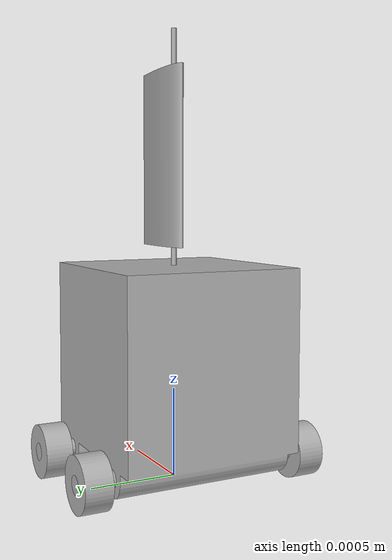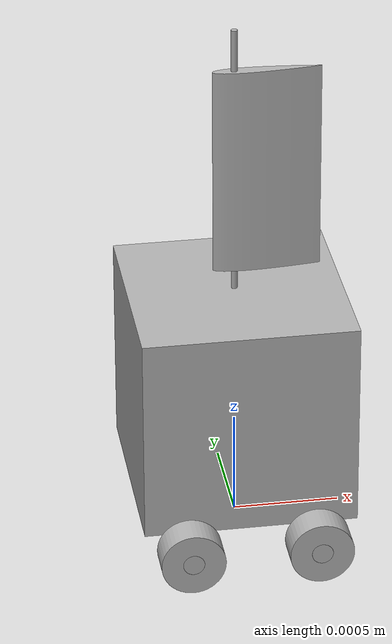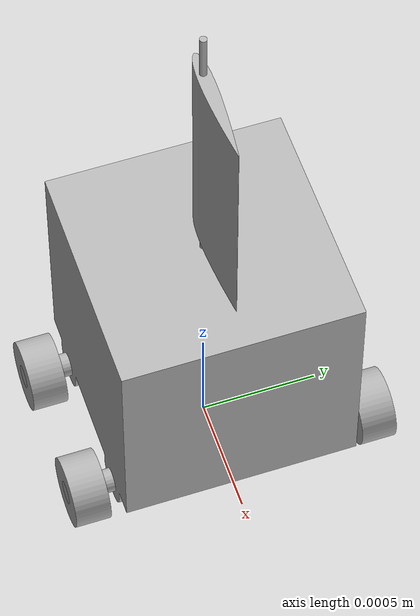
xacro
<?xml version="1.0" ?>
<robot name="cubo" xmlns:xacro="http://www.ros.org/wiki/xacro">

<xacro:include filename="$(find cubo_description)/urdf/materials.xacro" />
<xacro:include filename="$(find cubo_description)/urdf/cubo.trans" />
<xacro:include filename="$(find cubo_description)/urdf/cubo.gazebo" />
<link name="base_link">
  <inertial>
    <origin xyz="0.0 -1.4387415876218923e-16 0.6802331218289486" rpy="0 0 0"/>
    <mass value="8130.307511653398"/>
    <inertia ixx="1421.174701" iyy="1424.106222" izz="1357.982772" ixy="-0.0" iyz="-0.0" ixz="-0.0"/>
  </inertial>
  <visual>
    <origin xyz="0 0 0" rpy="0 0 0"/>
    <geometry>
      <mesh filename="package://cubo_description/meshes/base_link.stl" scale="0.001 0.001 0.001"/>
    </geometry>
    <material name="silver"/>
  </visual>
  <collision>
    <origin xyz="0 0 0" rpy="0 0 0"/>
    <geometry>
      <mesh filename="package://cubo_description/meshes/base_link.stl" scale="0.001 0.001 0.001"/>
    </geometry>
  </collision>
</link>

<link name="axis1_link_1">
  <inertial>
    <origin xyz="0.0 0.5 0.0" rpy="0 0 0"/>
    <mass value="86.31525815737957"/>
    <inertia ixx="14.152106" iyy="0.107894" izz="14.152106" ixy="0.0" iyz="0.0" ixz="-0.0"/>
  </inertial>
  <visual>
    <origin xyz="0.3 0.5 -0.15" rpy="0 0 0"/>
    <geometry>
      <mesh filename="package://cubo_description/meshes/axis1_link_1.stl" scale="0.001 0.001 0.001"/>
    </geometry>
    <material name="silver"/>
  </visual>
  <collision>
    <origin xyz="0.3 0.5 -0.15" rpy="0 0 0"/>
    <geometry>
      <mesh filename="package://cubo_description/meshes/axis1_link_1.stl" scale="0.001 0.001 0.001"/>
    </geometry>
  </collision>
</link>

<link name="axis2_link_1">
  <inertial>
    <origin xyz="0.0 0.5 0.0" rpy="0 0 0"/>
    <mass value="86.31525815737956"/>
    <inertia ixx="14.152106" iyy="0.107894" izz="14.152106" ixy="0.0" iyz="0.0" ixz="-0.0"/>
  </inertial>
  <visual>
    <origin xyz="-0.3 0.5 -0.15" rpy="0 0 0"/>
    <geometry>
      <mesh filename="package://cubo_description/meshes/axis2_link_1.stl" scale="0.001 0.001 0.001"/>
    </geometry>
    <material name="silver"/>
  </visual>
  <collision>
    <origin xyz="-0.3 0.5 -0.15" rpy="0 0 0"/>
    <geometry>
      <mesh filename="package://cubo_description/meshes/axis2_link_1.stl" scale="0.001 0.001 0.001"/>
    </geometry>
  </collision>
</link>

<link name="wheel1_link_1">
  <inertial>
    <origin xyz="-5.551115123125783e-17 0.07500000000000007 2.7755575615628914e-17" rpy="0 0 0"/>
    <mass value="73.98450699203963"/>
    <inertia ixx="0.601124" iyy="0.924806" izz="0.601124" ixy="0.0" iyz="0.0" ixz="-0.0"/>
  </inertial>
  <visual>
    <origin xyz="0.3 0.7 -0.15" rpy="0 0 0"/>
    <geometry>
      <mesh filename="package://cubo_description/meshes/wheel1_link_1.stl" scale="0.001 0.001 0.001"/>
    </geometry>
    <material name="silver"/>
  </visual>
  <collision>
    <origin xyz="0.3 0.7 -0.15" rpy="0 0 0"/>
    <geometry>
      <mesh filename="package://cubo_description/meshes/wheel1_link_1.stl" scale="0.001 0.001 0.001"/>
    </geometry>
  </collision>
</link>

<link name="wheel2_link_1">
  <inertial>
    <origin xyz="5.551115123125783e-17 0.07499999999999984 2.7755575615628914e-17" rpy="0 0 0"/>
    <mass value="73.98450699203961"/>
    <inertia ixx="0.601124" iyy="0.924806" izz="0.601124" ixy="-0.0" iyz="-0.0" ixz="0.0"/>
  </inertial>
  <visual>
    <origin xyz="-0.3 0.7 -0.15" rpy="0 0 0"/>
    <geometry>
      <mesh filename="package://cubo_description/meshes/wheel2_link_1.stl" scale="0.001 0.001 0.001"/>
    </geometry>
    <material name="silver"/>
  </visual>
  <collision>
    <origin xyz="-0.3 0.7 -0.15" rpy="0 0 0"/>
    <geometry>
      <mesh filename="package://cubo_description/meshes/wheel2_link_1.stl" scale="0.001 0.001 0.001"/>
    </geometry>
  </collision>
</link>

<link name="wheel3_link_1">
  <inertial>
    <origin xyz="0.0 -0.07499999999999984 2.7755575615628914e-17" rpy="0 0 0"/>
    <mass value="73.98450699203961"/>
    <inertia ixx="0.601124" iyy="0.924806" izz="0.601124" ixy="0.0" iyz="-0.0" ixz="-0.0"/>
  </inertial>
  <visual>
    <origin xyz="0.3 -0.7 -0.15" rpy="0 0 0"/>
    <geometry>
      <mesh filename="package://cubo_description/meshes/wheel3_link_1.stl" scale="0.001 0.001 0.001"/>
    </geometry>
    <material name="silver"/>
  </visual>
  <collision>
    <origin xyz="0.3 -0.7 -0.15" rpy="0 0 0"/>
    <geometry>
      <mesh filename="package://cubo_description/meshes/wheel3_link_1.stl" scale="0.001 0.001 0.001"/>
    </geometry>
  </collision>
</link>

<link name="wheel4_link_1">
  <inertial>
    <origin xyz="5.551115123125783e-17 -0.07500000000000007 2.7755575615628914e-17" rpy="0 0 0"/>
    <mass value="73.98450699203963"/>
    <inertia ixx="0.601124" iyy="0.924806" izz="0.601124" ixy="0.0" iyz="-0.0" ixz="0.0"/>
  </inertial>
  <visual>
    <origin xyz="-0.3 -0.7 -0.15" rpy="0 0 0"/>
    <geometry>
      <mesh filename="package://cubo_description/meshes/wheel4_link_1.stl" scale="0.001 0.001 0.001"/>
    </geometry>
    <material name="silver"/>
  </visual>
  <collision>
    <origin xyz="-0.3 -0.7 -0.15" rpy="0 0 0"/>
    <geometry>
      <mesh filename="package://cubo_description/meshes/wheel4_link_1.stl" scale="0.001 0.001 0.001"/>
    </geometry>
  </collision>
</link>

<link name="mast_link_1">
  <inertial>
    <origin xyz="0.0 0.0 0.6500000000000001" rpy="0 0 0"/>
    <mass value="7.213489431723865"/>
    <inertia ixx="1.016306" iyy="1.016306" izz="0.000812" ixy="0.0" iyz="0.0" ixz="0.0"/>
  </inertial>
  <visual>
    <origin xyz="-0.0 -0.0 -1.2" rpy="0 0 0"/>
    <geometry>
      <mesh filename="package://cubo_description/meshes/mast_link_1.stl" scale="0.001 0.001 0.001"/>
    </geometry>
    <material name="silver"/>
  </visual>
  <collision>
    <origin xyz="-0.0 -0.0 -1.2" rpy="0 0 0"/>
    <geometry>
      <mesh filename="package://cubo_description/meshes/mast_link_1.stl" scale="0.001 0.001 0.001"/>
    </geometry>
  </collision>
</link>

<link name="sail_link_1">
  <inertial>
    <origin xyz="0.11414344795479987 -5.0741241850164775e-15 -0.5000000000000375" rpy="0 0 0"/>
    <mass value="21.036380800122238"/>
    <inertia ixx="1.757501" iyy="2.044229" izz="0.295667" ixy="0.0" iyz="-0.0" ixz="-0.0"/>
  </inertial>
  <visual>
    <origin xyz="-0.0 -0.0 -2.5" rpy="0 0 0"/>
    <geometry>
      <mesh filename="package://cubo_description/meshes/sail_link_1.stl" scale="0.001 0.001 0.001"/>
    </geometry>
    <material name="silver"/>
  </visual>
  <collision>
    <origin xyz="-0.0 -0.0 -2.5" rpy="0 0 0"/>
    <geometry>
      <mesh filename="package://cubo_description/meshes/sail_link_1.stl" scale="0.001 0.001 0.001"/>
    </geometry>
  </collision>
</link>

<joint name="revolute1_joint" type="continuous">
  <origin xyz="-0.3 -0.5 0.15" rpy="0 0 0"/>
  <parent link="base_link"/>
  <child link="axis1_link_1"/>
  <axis xyz="0.0 1.0 0.0"/>
</joint>

<joint name="revloute2_joint" type="continuous">
  <origin xyz="0.3 -0.5 0.15" rpy="0 0 0"/>
  <parent link="base_link"/>
  <child link="axis2_link_1"/>
  <axis xyz="0.0 1.0 0.0"/>
</joint>

<joint name="wheel1_joint" type="fixed">
  <origin xyz="0.0 -0.2 0.0" rpy="0 0 0"/>
  <parent link="axis1_link_1"/>
  <child link="wheel1_link_1"/>
</joint>

<joint name="wheel2_joint" type="fixed">
  <origin xyz="0.0 -0.2 0.0" rpy="0 0 0"/>
  <parent link="axis2_link_1"/>
  <child link="wheel2_link_1"/>
</joint>

<joint name="wheel3_joint" type="fixed">
  <origin xyz="0.0 1.2 0.0" rpy="0 0 0"/>
  <parent link="axis1_link_1"/>
  <child link="wheel3_link_1"/>
</joint>

<joint name="wheel4_joint" type="fixed">
  <origin xyz="0.0 1.2 0.0" rpy="0 0 0"/>
  <parent link="axis2_link_1"/>
  <child link="wheel4_link_1"/>
</joint>

<joint name="base_mast_joint" type="continuous">
  <origin xyz="0.0 0.0 1.2" rpy="0 0 0"/>
  <parent link="base_link"/>
  <child link="mast_link_1"/>
  <axis xyz="0.0 0.0 1.0"/>
</joint>

<joint name="mast_sail_joint" type="fixed">
  <origin xyz="0.0 0.0 1.3" rpy="0 0 0"/>
  <parent link="mast_link_1"/>
  <child link="sail_link_1"/>
</joint>

</robot>

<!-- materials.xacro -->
<robot name="cubo" xmlns:xacro="http://www.ros.org/wiki/xacro" >

<material name="silver">
  <color rgba="0.700 0.700 0.700 1.000"/>
</material>

</robot>

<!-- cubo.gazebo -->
<robot name="cubo" xmlns:xacro="http://www.ros.org/wiki/xacro" >

<xacro:property name="body_color" value="Gazebo/Silver" />

<gazebo>
  <plugin name="control" filename="libgazebo_ros_control.so"/>
</gazebo>
<gazebo reference="base_link">
  <material>${body_color}</material>
  <mu1>0.2</mu1>
  <mu2>0.2</mu2>
  <selfCollide>true</selfCollide>
  <gravity>true</gravity>
</gazebo>

<gazebo reference="axis1_link_1">
  <material>${body_color}</material>
  <mu1>0.2</mu1>
  <mu2>0.2</mu2>
  <selfCollide>true</selfCollide>
</gazebo>

<gazebo reference="axis2_link_1">
  <material>${body_color}</material>
  <mu1>0.2</mu1>
  <mu2>0.2</mu2>
  <selfCollide>true</selfCollide>
</gazebo>

<gazebo reference="wheel1_link_1">
  <material>${body_color}</material>
  <mu1>0.2</mu1>
  <mu2>0.2</mu2>
  <selfCollide>true</selfCollide>
</gazebo>

<gazebo reference="wheel2_link_1">
  <material>${body_color}</material>
  <mu1>0.2</mu1>
  <mu2>0.2</mu2>
  <selfCollide>true</selfCollide>
</gazebo>

<gazebo reference="wheel3_link_1">
  <material>${body_color}</material>
  <mu1>0.2</mu1>
  <mu2>0.2</mu2>
  <selfCollide>true</selfCollide>
</gazebo>

<gazebo reference="wheel4_link_1">
  <material>${body_color}</material>
  <mu1>0.2</mu1>
  <mu2>0.2</mu2>
  <selfCollide>true</selfCollide>
</gazebo>

<gazebo reference="mast_link_1">
  <material>${body_color}</material>
  <mu1>0.2</mu1>
  <mu2>0.2</mu2>
  <selfCollide>true</selfCollide>
</gazebo>

<gazebo reference="sail_link_1">
  <material>${body_color}</material>
  <mu1>0.2</mu1>
  <mu2>0.2</mu2>
  <selfCollide>true</selfCollide>
</gazebo>

</robot>
